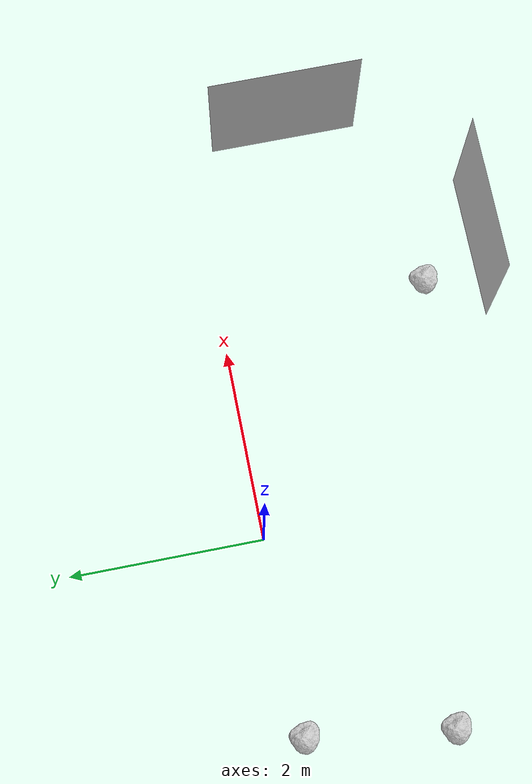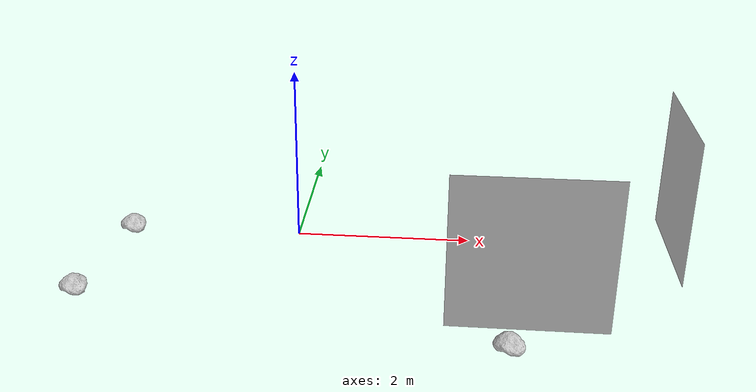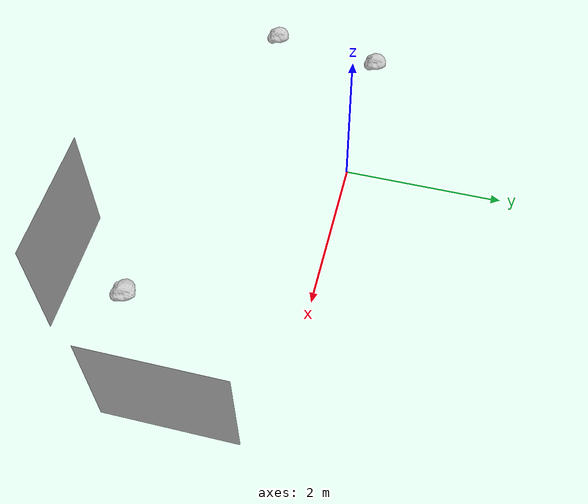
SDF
<sdf version="1.6">
 <world name="lunabotics_artemis_arena">
  <plugin filename="gz-sim-physics-system" name="gz::sim::systems::Physics"/>
  <plugin filename="gz-sim-user-commands-system" name="gz::sim::systems::UserCommands"/>
  <plugin filename="gz-sim-scene-broadcaster-system" name="gz::sim::systems::SceneBroadcaster"/>
  <plugin filename="gz-sim-sensors-system" name="gz::sim::systems::Sensors">
   <render_engine>ogre2</render_engine>
  </plugin>
  <plugin filename="gz-sim-imu-system" name="gz::sim::systems::Imu"/>
  <plugin filename="gz-sim-contact-system" name="gz::sim::systems::Contact"/>
  <include><uri>https://fuel.gazebosim.org/1.0/OpenRobotics/models/Sun</uri></include>
  <scene><shadows>true</shadows></scene>
  <physics type="ode">
   <real_time_update_rate>1000.0</real_time_update_rate>
   <max_step_size>0.01</max_step_size>
   <real_time_factor>1</real_time_factor>
   <max_contacts>100</max_contacts>
   <ode>
    <solver>
     <type>quick</type>
     <iters>150</iters>
     <precon_iters>0</precon_iters>
     <sor>1.400000</sor>
     <use_dynamic_moi_rescaling>1</use_dynamic_moi_rescaling>
    </solver>
    <constraints>
     <cfm>0.00001</cfm>
     <erp>0.2</erp>
     <contact_max_correcting_vel>2000.000000</contact_max_correcting_vel>
     <contact_surface_layer>0.01000</contact_surface_layer>
    </constraints>
   </ode>
  </physics>
  <include>
   <name>round_rock_1</name>
   <pose>-2.0 -0.017282 0.05 0 0 0.846674</pose>
   <uri>model://round_rock</uri>
  </include>
  <include>
   <name>round_rock_2</name>
   <pose>-2.2 -1.5 0.05 0 0 0.846674</pose>
   <uri>model://round_rock</uri>
  </include>
  <include>
   <name>round_rock_3</name>
   <pose>2.4 -2.2 0.05 0 0 0.846674</pose>
   <uri>model://round_rock</uri>
  </include>
  <include>
   <name>tag_917_840</name>
   <pose>4.05 -1.0 1.25  1.5708 0 -1.5708</pose>
   <uri>model://tag_917_840</uri>
  </include>
  <include>
   <name>tag_733_669</name>
   <pose>2.5 -2.65 1.25  1.5708 0 3.14159</pose>
   <uri>model://tag_733_669</uri>
  </include>
 </world>
</sdf>

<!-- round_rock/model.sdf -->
<sdf version="1.7">
    <model name="round_rock">
        <!--pose relative to placement in world-->
        <pose>0 0 0 0 0 0</pose>

        <static>true</static>

        <link name="link">

            <!-- visual model-->
            <visual name="visual">
                <geometry>
                    <mesh>
                        <uri>model://round_rock/meshes/rock_round.dae</uri>
                    </mesh>
                </geometry>

                <material> <!-- mid-grey material-->
                    <ambient>0.8 0.8 0.8 1</ambient>
                    <diffuse>0.8 0.8 0.8 1</diffuse>
                    <specular>0.8 0.8 0.8 1</specular>
                </material>
            </visual>

            <!-- collision geometry-->
            <collision name="collision">
                <geometry>
                    <mesh>
                        <uri>model://round_rock/meshes/rock_round.stl</uri>
                    </mesh>
                </geometry>
                <max_contacts>10</max_contacts> <!--hopefully prevents lag-->
            </collision>

            <inertial>
                <mass>1</mass>
                <inertia>
                <ixx>0.0002</ixx>
                <iyy>0.0002</iyy>
                <izz>0.0002</izz>
                </inertia>
            </inertial>
        </link>
    </model>
</sdf>

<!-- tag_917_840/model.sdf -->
<sdf version="1.6">
  <model name="tag_917_840">
    <static>true</static>
    <link name="link">
      <visual name="visual">
        <geometry>
          <mesh>
            <uri>model://tag_917_840/meshes/tag_917_840.dae</uri>
          </mesh>
        </geometry>
      </visual>

      <collision name="collision">
        <geometry>
          <mesh>
            <uri>model://tag_917_840/meshes/tag_917_840.dae</uri>
          </mesh>
        </geometry>
      </collision>
    </link>
  </model>
</sdf>

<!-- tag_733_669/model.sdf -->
<sdf version="1.6">
  <model name="tag_733_669">
    <static>true</static>
    <link name="link">
      <visual name="visual">
        <geometry>
          <mesh>
            <uri>model://tag_733_669/meshes/tag_733_669.dae</uri>
          </mesh>
        </geometry>
      </visual>

      <collision name="collision">
        <geometry>
          <mesh>
            <uri>model://tag_733_669/meshes/tag_733_669.dae</uri>
          </mesh>
        </geometry>
      </collision>
    </link>
  </model>
</sdf>
